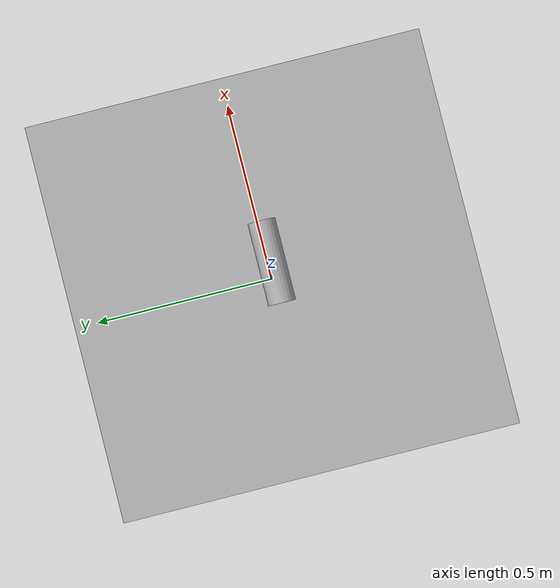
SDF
<sdf version='1.6'>
  <model name='test_light_robot'>
    <link name='robot'>
      <pose frame=''>0 0 0 0 -0 0</pose>
      <inertial>
        <pose frame=''>0 0 0 0 -0 0</pose>
        <mass>1</mass>
        <inertia>
          <ixx>1</ixx>
          <ixy>0</ixy>
          <ixz>0</ixz>
          <iyy>1</iyy>
          <iyz>0</iyz>
          <izz>1</izz>
        </inertia>
      </inertial>
      <collision name='robot_collision'>
        <pose frame=''>0 0 0 0 -0 0</pose>
        <geometry>
          <box>
            <size>1 1 1</size>
          </box>
        </geometry>
      </collision>
      <visual name='robot_visual'>
        <pose frame=''>0 0 0 0 -0 0</pose>
        <geometry>
          <box>
            <size>1 1 1</size>
          </box>
        </geometry>
      </visual>
    </link>
    <link name='light_link'>
      <pose frame=''>0 0 1.5 0 -0 0</pose>
      <inertial>
        <pose frame=''>0 0 0 0 -0 0</pose>
        <mass>0.0001</mass>
        <inertia>
          <ixx>0.0001</ixx>
          <ixy>0</ixy>
          <ixz>0</ixz>
          <iyy>0.0001</iyy>
          <iyz>0</iyz>
          <izz>0.0001</izz>
        </inertia>
      </inertial>
      <collision name='light_link_collision'>
        <pose frame=''>0 0 0 3.14159 1.57079 3.14159</pose>
        <geometry>
          <cylinder>
            <length>0.15</length>
            <radius>0.025</radius>
          </cylinder>
        </geometry>
      </collision>
      <visual name='light_link_visual'>
        <pose frame=''>0 0 0 3.14159 1.57079 3.14159</pose>
        <geometry>
          <cylinder>
            <length>0.15</length>
            <radius>0.025</radius>
          </cylinder>
        </geometry>
      </visual>
    </link>
    <joint name='j_robot_light_link' type='revolute'>
      <child>light_link</child>
      <parent>robot</parent>
      <axis>
        <xyz>1 0 0</xyz>
        <limit>
          <lower>0</lower>
          <upper>0</upper>
          <effort>0</effort>
          <velocity>0</velocity>
        </limit>
        <dynamics>
          <spring_reference>0</spring_reference>
          <spring_stiffness>0</spring_stiffness>
        </dynamics>
        <use_parent_model_frame>1</use_parent_model_frame>
      </axis>
    </joint>
  </model>
</sdf>
